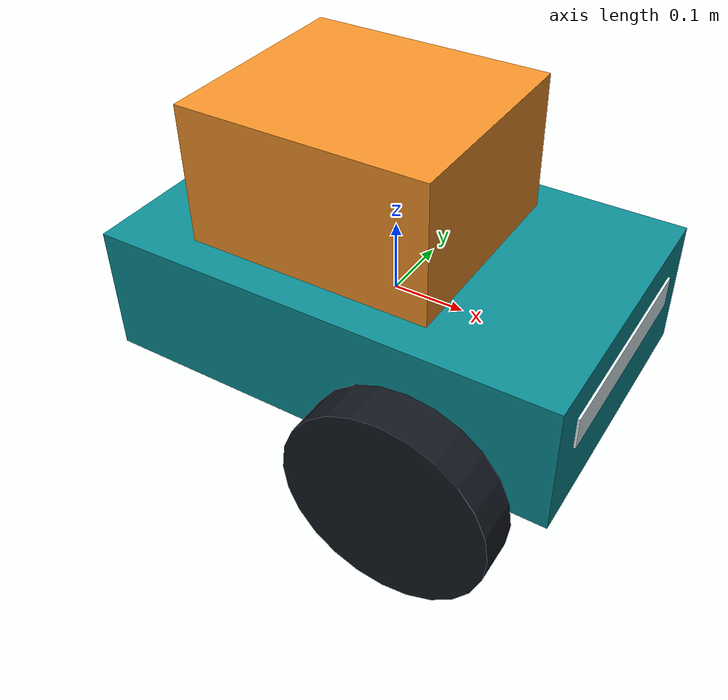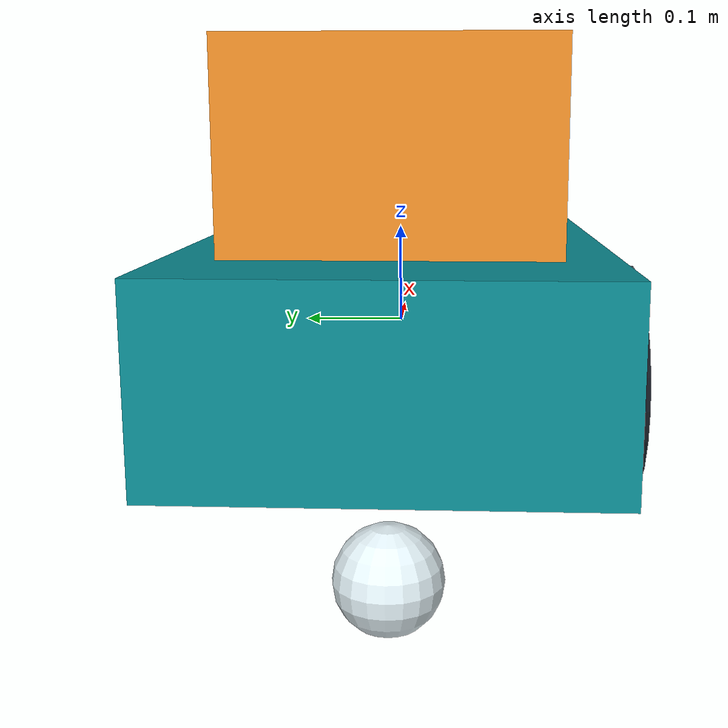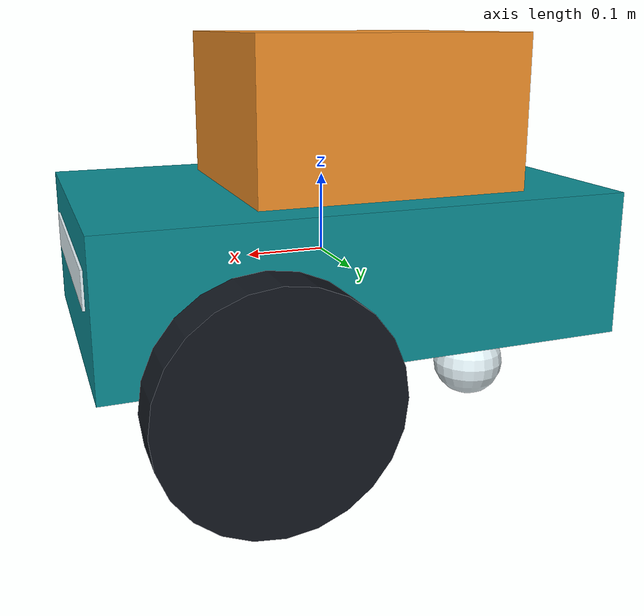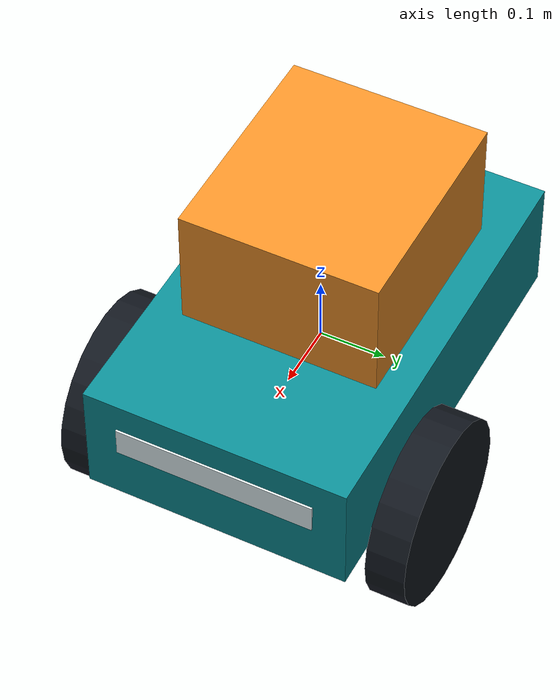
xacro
<?xml version="1.0"?>
<robot xmlns:xacro="http://www.ros.org/wiki/xacro" name="delivery_rover">
  <xacro:arg name="firmware" default="false"/>
  <xacro:arg name="drive" default="false"/>
  <xacro:arg name="sensors" default="false"/>
  <xacro:arg name="m6" default="false"/>
  <!-- SI units. base_link: body centre, x forward, y left, z up. -->
  <xacro:property name="wheel_radius" value="0.14"/>
  <xacro:property name="wheel_width" value="0.06"/>
  <xacro:property name="track" value="0.48"/>
  <material name="teal"><color rgba="0.04 0.55 0.58 1"/></material>
  <material name="rubber"><color rgba="0.07 0.09 0.12 1"/></material>
  <material name="parcel"><color rgba="0.95 0.57 0.16 1"/></material>
  <material name="white"><color rgba="0.9 0.96 0.98 1"/></material>

  <xacro:macro name="box_inertia" params="mass x y z">
    <inertial><mass value="${mass}"/>
      <inertia ixx="${mass*(y*y+z*z)/12}" ixy="0" ixz="0"
               iyy="${mass*(x*x+z*z)/12}" iyz="0" izz="${mass*(x*x+y*y)/12}"/>
    </inertial>
  </xacro:macro>

  <link name="base_link">
    <xacro:box_inertia mass="8.0" x="0.64" y="0.40" z="0.18"/>
    <visual><geometry><box size="0.64 0.40 0.18"/></geometry><material name="teal"/></visual>
    <collision><geometry><box size="0.64 0.40 0.18"/></geometry></collision>
    <!-- Front stripe is only a visual cue, not a sensor. -->
    <visual name="front_stripe"><origin xyz="0.321 0 0.02"/>
      <geometry><box size="0.004 0.30 0.045"/></geometry><material name="white"/>
    </visual>
  </link>

  <xacro:macro name="wheel" params="side sign">
    <link name="${side}_wheel">
      <inertial><mass value="0.6"/>
        <inertia ixx="${0.6*(3*wheel_radius*wheel_radius+wheel_width*wheel_width)/12}"
                 ixy="0" ixz="0" iyy="${0.6*wheel_radius*wheel_radius/2}" iyz="0"
                 izz="${0.6*(3*wheel_radius*wheel_radius+wheel_width*wheel_width)/12}"/>
      </inertial>
      <visual><origin rpy="${pi/2} 0 0"/>
        <geometry><cylinder radius="${wheel_radius}" length="${wheel_width}"/></geometry>
        <material name="rubber"/>
      </visual>
      <collision><origin rpy="${pi/2} 0 0"/>
        <geometry><cylinder radius="${wheel_radius}" length="${wheel_width}"/></geometry>
      </collision>
    </link>
    <joint name="${side}_wheel_joint" type="continuous">
      <parent link="base_link"/><child link="${side}_wheel"/>
      <origin xyz="0.14 ${sign*track/2} -0.10"/><axis xyz="0 1 0"/>
      <dynamics damping="0.02" friction="0.0"/>
      <limit effort="10" velocity="20"/>
    </joint>
    <gazebo reference="${side}_wheel"><mu1>1.0</mu1><mu2>1.0</mu2></gazebo>
  </xacro:macro>
  <xacro:wheel side="left" sign="1"/>
  <xacro:wheel side="right" sign="-1"/>

  <!-- AMCL's differential motion model is defined at the axle, not the
       offset chassis centre. This massless M6-only frame changes no physics. -->
  <xacro:if value="$(arg m6)">
    <link name="base_drive"/>
    <joint name="base_drive_joint" type="fixed">
      <parent link="base_link"/><child link="base_drive"/><origin xyz="0.14 0 0"/>
    </joint>
  </xacro:if>

  <!-- A low-friction sphere approximates a passive caster, not its swivel mechanics. -->
  <link name="rear_support">
    <inertial><mass value="0.1"/>
      <inertia ixx="0.0001" ixy="0" ixz="0" iyy="0.0001" iyz="0" izz="0.0001"/>
    </inertial>
    <visual><geometry><sphere radius="0.05"/></geometry><material name="white"/></visual>
    <collision><geometry><sphere radius="0.05"/></geometry></collision>
  </link>
  <joint name="rear_support_joint" type="fixed">
    <parent link="base_link"/><child link="rear_support"/><origin xyz="-0.23 0 -0.19"/>
  </joint>
  <gazebo reference="rear_support_joint"><preserveFixedJoint>true</preserveFixedJoint></gazebo>
  <gazebo reference="rear_support"><mu1>0.0</mu1><mu2>0.0</mu2></gazebo>

  <link name="parcel_tray">
    <xacro:box_inertia mass="1.0" x="0.34" y="0.30" z="0.19"/>
    <visual><geometry><box size="0.34 0.30 0.19"/></geometry><material name="parcel"/></visual>
    <collision><geometry><box size="0.34 0.30 0.19"/></geometry></collision>
  </link>
  <joint name="parcel_tray_joint" type="fixed">
    <parent link="base_link"/><child link="parcel_tray"/><origin xyz="-0.04 0 0.185"/>
  </joint>
  <!-- Opt in to M3; the M2 passive baseline stays unchanged. -->
  <xacro:if value="$(arg drive)">
    <gazebo>
      <xacro:unless value="$(arg firmware)">
      <plugin filename="gz-sim-diff-drive-system" name="gz::sim::systems::DiffDrive">
        <left_joint>left_wheel_joint</left_joint><right_joint>right_wheel_joint</right_joint>
        <wheel_separation>${track}</wheel_separation><wheel_radius>${wheel_radius}</wheel_radius>
        <topic>/model/delivery_rover/cmd_vel</topic>
        <!-- These native outputs are deliberately NOT bridged into ROS. -->
        <odom_topic>/model/delivery_rover/unused_native_odom</odom_topic>
        <tf_topic>/model/delivery_rover/unused_native_tf</tf_topic>
      </plugin>
      </xacro:unless>
      <xacro:if value="$(arg firmware)">
        <plugin filename="librover_motor_driver.so" name="rover::MotorDriver"/>
      </xacro:if>
      <plugin filename="gz-sim-joint-state-publisher-system" name="gz::sim::systems::JointStatePublisher">
        <topic>/model/delivery_rover/joint_state</topic>
        <joint_name>left_wheel_joint</joint_name><joint_name>right_wheel_joint</joint_name>
        <update_rate>50</update_rate>
      </plugin>
    </gazebo>
  </xacro:if>
  <xacro:if value="$(arg sensors)">
    <xacro:include filename="sensors.xacro"/>
  </xacro:if>
</robot>
